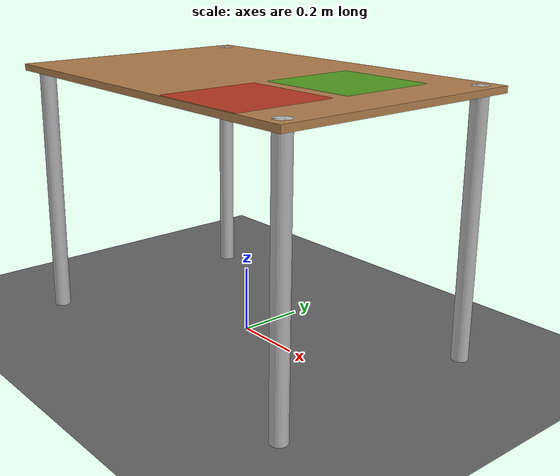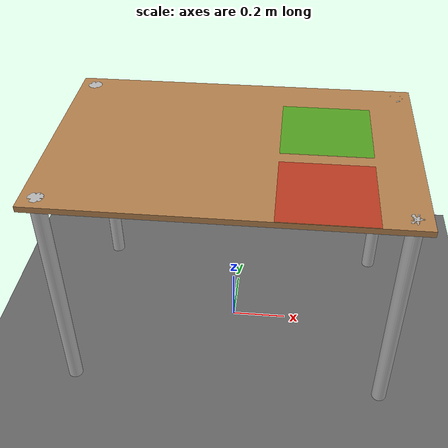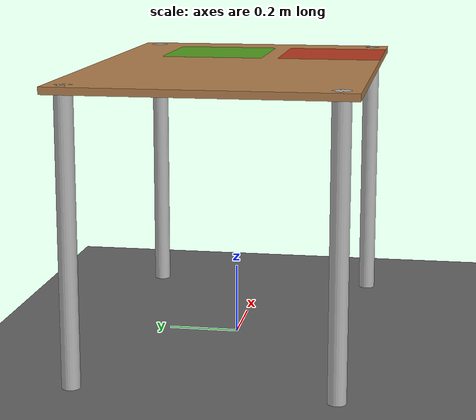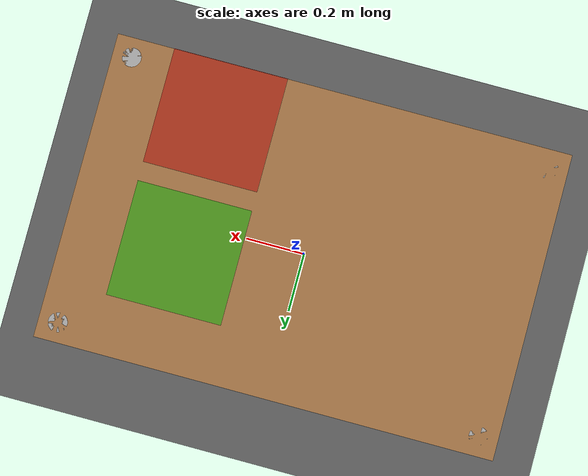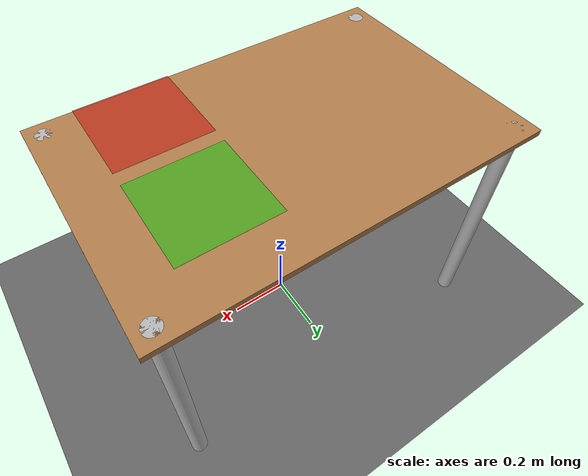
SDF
<?xml version="1.0"?>
<!--
  pick_place_world.sdf
  World for Franka FR3 Pick and Place simulation.
  Contains: ground plane, table, light sources, boundary walls.
  Blocks are spawned separately via spawn_blocks.launch.py
-->
<sdf version="1.9">
  <world name="pick_place_world">

    <!-- ═══════════════════════════════════
         PHYSICS
    ═══════════════════════════════════ -->
    <physics name="1ms" type="ignored">
      <max_step_size>0.001</max_step_size>
      <real_time_factor>1.0</real_time_factor>
    </physics>

    <!-- ═══════════════════════════════════
         PLUGINS
    ═══════════════════════════════════ -->
    <plugin filename="gz-sim-physics-system"       name="gz::sim::systems::Physics"/>
    <plugin filename="gz-sim-sensors-system"       name="gz::sim::systems::Sensors">
      <render_engine>ogre2</render_engine>
    </plugin>
    <plugin filename="gz-sim-scene-broadcaster-system" name="gz::sim::systems::SceneBroadcaster"/>
    <plugin filename="gz-sim-user-commands-system"     name="gz::sim::systems::UserCommands"/>
    <plugin filename="gz-sim-contact-system"           name="gz::sim::systems::Contact"/>

    <!-- ═══════════════════════════════════
         LIGHTING
    ═══════════════════════════════════ -->
    <light type="directional" name="sun">
      <cast_shadows>true</cast_shadows>
      <pose>0 0 10 0 0 0</pose>
      <diffuse>0.9 0.9 0.9 1</diffuse>
      <specular>0.2 0.2 0.2 1</specular>
      <direction>-0.5 0.1 -0.9</direction>
    </light>

    <!-- Ambient fill light -->
    <light type="point" name="ambient_light">
      <pose>0 0 3 0 0 0</pose>
      <diffuse>0.4 0.4 0.4 1</diffuse>
      <specular>0 0 0 1</specular>
      <attenuation>
        <range>20</range>
        <constant>0.5</constant>
        <linear>0.01</linear>
        <quadratic>0.001</quadratic>
      </attenuation>
    </light>

    <!-- ═══════════════════════════════════
         GROUND PLANE
    ═══════════════════════════════════ -->
    <model name="ground_plane">
      <static>true</static>
      <link name="link">
        <collision name="collision">
          <geometry><plane><normal>0 0 1</normal><size>20 20</size></plane></geometry>
        </collision>
        <visual name="visual">
          <geometry><plane><normal>0 0 1</normal><size>20 20</size></plane></geometry>
          <material>
            <ambient>0.3 0.3 0.3 1</ambient>
            <diffuse>0.4 0.4 0.4 1</diffuse>
          </material>
        </visual>
      </link>
    </model>

    <!-- ═══════════════════════════════════
         TABLE
         80cm tall, 1.2m x 0.8m top
         Robot base is at z=0.8 (table height)
    ═══════════════════════════════════ -->
    <model name="table">
      <static>true</static>
      <pose>0 0 0 0 0 0</pose>
      <link name="table_top">
        <pose>0 0 0.79 0 0 0</pose>
        <collision name="collision">
          <geometry><box><size>1.2 0.8 0.02</size></box></geometry>
        </collision>
        <visual name="visual">
          <geometry><box><size>1.2 0.8 0.02</size></box></geometry>
          <material>
            <ambient>0.6 0.4 0.2 1</ambient>
            <diffuse>0.7 0.5 0.3 1</diffuse>
          </material>
        </visual>
      </link>
      <!-- Table legs -->
      <link name="leg_fl"><pose>-0.55 0.35 0.4 0 0 0</pose>
        <collision name="c"><geometry><cylinder><radius>0.025</radius><length>0.8</length></cylinder></geometry></collision>
        <visual    name="v"><geometry><cylinder><radius>0.025</radius><length>0.8</length></cylinder></geometry></visual>
      </link>
      <link name="leg_fr"><pose> 0.55 0.35 0.4 0 0 0</pose>
        <collision name="c"><geometry><cylinder><radius>0.025</radius><length>0.8</length></cylinder></geometry></collision>
        <visual    name="v"><geometry><cylinder><radius>0.025</radius><length>0.8</length></cylinder></geometry></visual>
      </link>
      <link name="leg_bl"><pose>-0.55 -0.35 0.4 0 0 0</pose>
        <collision name="c"><geometry><cylinder><radius>0.025</radius><length>0.8</length></cylinder></geometry></collision>
        <visual    name="v"><geometry><cylinder><radius>0.025</radius><length>0.8</length></cylinder></geometry></visual>
      </link>
      <link name="leg_br"><pose> 0.55 -0.35 0.4 0 0 0</pose>
        <collision name="c"><geometry><cylinder><radius>0.025</radius><length>0.8</length></cylinder></geometry></collision>
        <visual    name="v"><geometry><cylinder><radius>0.025</radius><length>0.8</length></cylinder></geometry></visual>
      </link>
    </model>

    <!-- ═══════════════════════════════════
         PICK ZONE MARKER (green mat)
         Where blocks start — left side of table
    ═══════════════════════════════════ -->
    <model name="pick_zone_marker">
      <static>true</static>
      <pose>0.3 0.1 0.802 0 0 0</pose>
      <link name="link">
        <visual name="visual">
          <geometry><box><size>0.3 0.3 0.002</size></box></geometry>
          <material><ambient>0.0 0.6 0.0 0.5</ambient><diffuse>0.0 0.8 0.0 0.5</diffuse></material>
        </visual>
      </link>
    </model>

    <!-- ═══════════════════════════════════
         PLACE ZONE MARKER (red mat)
         Where blocks go — right side of table
    ═══════════════════════════════════ -->
    <model name="place_zone_marker">
      <static>true</static>
      <pose>0.3 -0.25 0.802 0 0 0</pose>
      <link name="link">
        <visual name="visual">
          <geometry><box><size>0.3 0.3 0.002</size></box></geometry>
          <material><ambient>0.6 0.0 0.0 0.5</ambient><diffuse>0.8 0.0 0.0 0.5</diffuse></material>
        </visual>
      </link>
    </model>

  </world>
</sdf>
